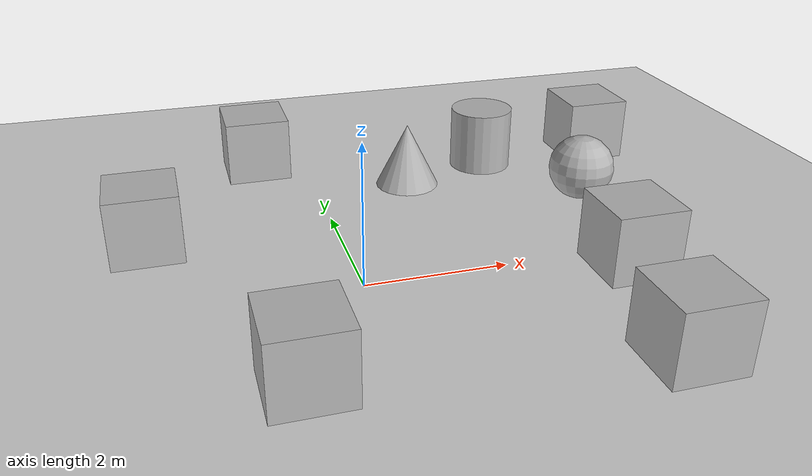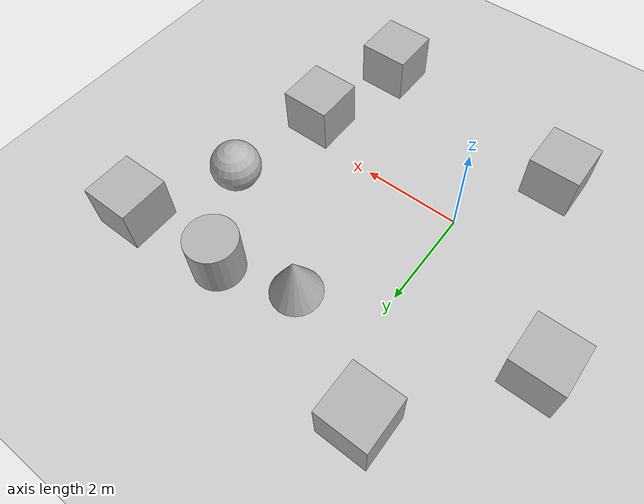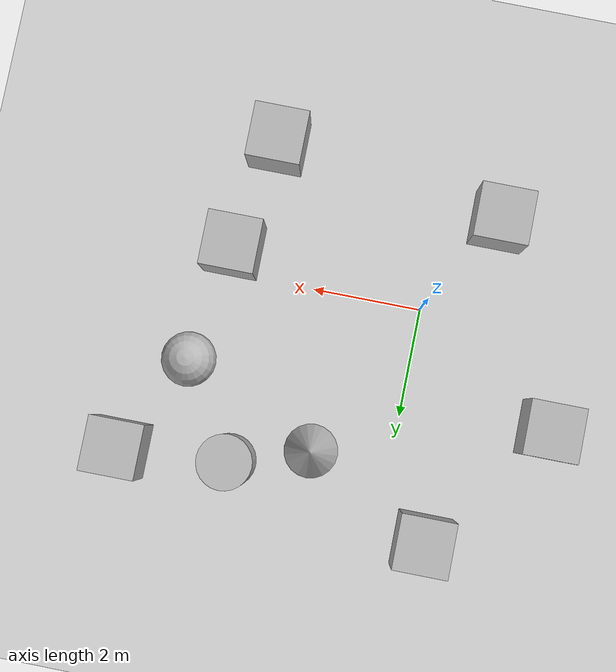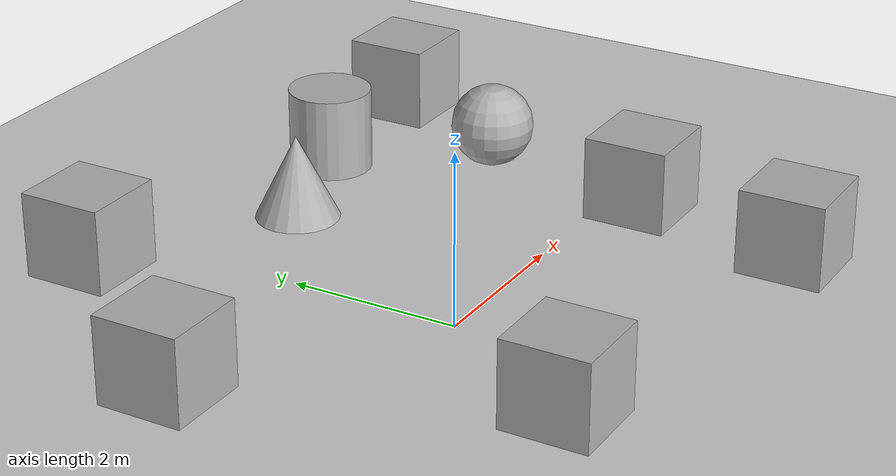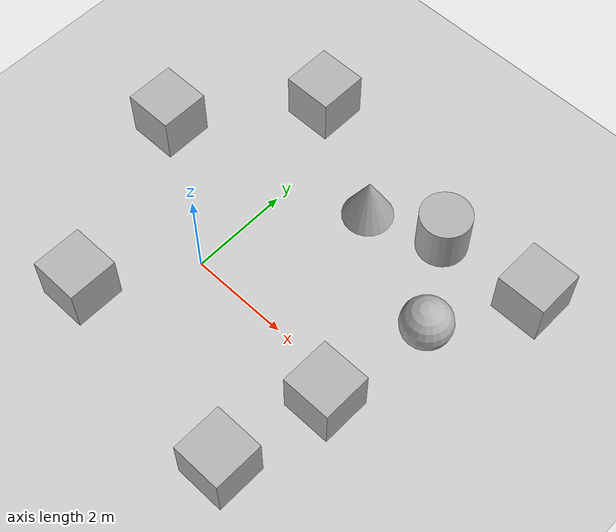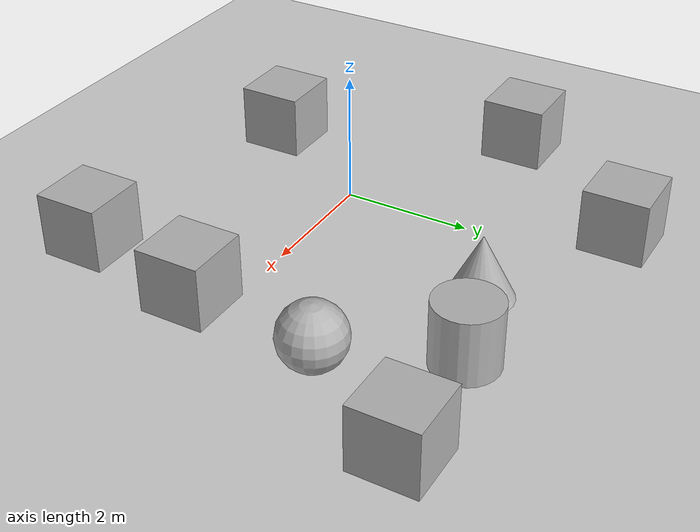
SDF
<sdf version='1.10'>
  <world name='empty'>
    <physics name='1ms' type='ignored'>
      <max_step_size>0.001</max_step_size>
      <real_time_factor>1</real_time_factor>
      <real_time_update_rate>1000</real_time_update_rate>
    </physics>
    <plugin name='gz::sim::systems::Physics' filename='gz-sim-physics-system'/>
    <plugin name='gz::sim::systems::UserCommands' filename='gz-sim-user-commands-system'/>
    <plugin name='gz::sim::systems::SceneBroadcaster' filename='gz-sim-scene-broadcaster-system'/>
    <plugin name='gz::sim::systems::Contact' filename='gz-sim-contact-system'/>
    <plugin
      filename="gz-sim-sensors-system"
      name="gz::sim::systems::Sensors">
      <render_engine>ogre2</render_engine>
    </plugin>
    <gravity>0 0 -9.8000000000000007</gravity>
    <magnetic_field>5.5644999999999998e-06 2.2875799999999999e-05 -4.2388400000000002e-05</magnetic_field>
    <atmosphere type='adiabatic'/>
    <scene>
      <ambient>0.400000006 0.400000006 0.400000006 1</ambient>
      <background>0.699999988 0.699999988 0.699999988 1</background>
      <shadows>true</shadows>
    </scene>
    <model name='ground_plane'>
      <static>true</static>
      <link name='link'>
        <collision name='collision'>
          <geometry>
            <plane>
              <normal>0 0 1</normal>
              <size>100 100</size>
            </plane>
          </geometry>
          <surface>
            <friction>
              <ode/>
            </friction>
            <bounce/>
            <contact/>
          </surface>
        </collision>
        <visual name='visual'>
          <geometry>
            <plane>
              <normal>0 0 1</normal>
              <size>100 100</size>
            </plane>
          </geometry>
          <material>
            <ambient>0.800000012 0.800000012 0.800000012 1</ambient>
            <diffuse>0.800000012 0.800000012 0.800000012 1</diffuse>
            <specular>0.800000012 0.800000012 0.800000012 1</specular>
          </material>
        </visual>
        <pose>0 0 0 0 0 0</pose>
        <inertial>
          <pose>0 0 0 0 0 0</pose>
          <mass>1</mass>
          <inertia>
            <ixx>1</ixx>
            <ixy>0</ixy>
            <ixz>0</ixz>
            <iyy>1</iyy>
            <iyz>0</iyz>
            <izz>1</izz>
          </inertia>
        </inertial>
        <enable_wind>false</enable_wind>
      </link>
      <pose>0 0 0 0 0 0</pose>
      <self_collide>false</self_collide>
    </model>
    <model name='box'>
      <pose>4.9108427998847457 3.5283468808821032 0.49999999990199806 6.2287739151293738e-22 9.3279666454713669e-22 -3.6315533669320137e-22</pose>
      <link name='box_link'>
        <inertial>
          <inertia>
            <ixx>0.16666</ixx>
            <ixy>0</ixy>
            <ixz>0</ixz>
            <iyy>0.16666</iyy>
            <iyz>0</iyz>
            <izz>0.16666</izz>
          </inertia>
          <mass>1</mass>
          <pose>0 0 0 0 0 0</pose>
        </inertial>
        <collision name='box_collision'>
          <geometry>
            <box>
              <size>1 1 1</size>
            </box>
          </geometry>
          <surface>
            <friction>
              <ode/>
            </friction>
            <bounce/>
            <contact/>
          </surface>
        </collision>
        <visual name='box_visual'>
          <geometry>
            <box>
              <size>1 1 1</size>
            </box>
          </geometry>
          <material>
            <ambient>0.300000012 0.300000012 0.300000012 1</ambient>
            <diffuse>0.699999988 0.699999988 0.699999988 1</diffuse>
            <specular>1 1 1 1</specular>
          </material>
        </visual>
        <pose>0 0 0 0 0 0</pose>
        <enable_wind>false</enable_wind>
      </link>
      <static>false</static>
      <self_collide>false</self_collide>
    </model>
    <model name='cone'>
      <pose>1.4732154155035606 2.9408778593240905 0.49999999991622396 1.1632044848892052e-07 -2.659319401457765e-08 0.017572902059282428</pose>
      <link name='cone_link'>
        <inertial>
          <inertia>
            <ixx>0.074999999999999997</ixx>
            <ixy>0</ixy>
            <ixz>0</ixz>
            <iyy>0.074999999999999997</iyy>
            <iyz>0</iyz>
            <izz>0.074999999999999997</izz>
          </inertia>
          <mass>1</mass>
          <pose>0 0 0 0 0 0</pose>
        </inertial>
        <collision name='cone_collision'>
          <geometry>
            <cone>
              <radius>0.5</radius>
              <length>1</length>
            </cone>
          </geometry>
          <surface>
            <friction>
              <ode/>
            </friction>
            <bounce/>
            <contact/>
          </surface>
        </collision>
        <visual name='cone_visual'>
          <geometry>
            <cone>
              <radius>0.5</radius>
              <length>1</length>
            </cone>
          </geometry>
          <material>
            <ambient>0.300000012 0.300000012 0.300000012 1</ambient>
            <diffuse>0.699999988 0.699999988 0.699999988 1</diffuse>
            <specular>1 1 1 1</specular>
          </material>
        </visual>
        <pose>0 0 0 0 0 0</pose>
        <enable_wind>false</enable_wind>
      </link>
      <static>false</static>
      <self_collide>false</self_collide>
    </model>
    <model name='box_0'>
      <pose>-0.81356091926718044 4.1602014499805469 0.49999999990199806 6.2287739151293738e-22 9.3279666454713669e-22 -3.6315533669320137e-22</pose>
      <link name='box_link'>
        <inertial>
          <inertia>
            <ixx>0.16666</ixx>
            <ixy>0</ixy>
            <ixz>0</ixz>
            <iyy>0.16666</iyy>
            <iyz>0</iyz>
            <izz>0.16666</izz>
          </inertia>
          <mass>1</mass>
          <pose>0 0 0 0 0 0</pose>
        </inertial>
        <collision name='box_collision'>
          <geometry>
            <box>
              <size>1 1 1</size>
            </box>
          </geometry>
          <surface>
            <friction>
              <ode/>
            </friction>
            <bounce/>
            <contact/>
          </surface>
        </collision>
        <visual name='box_visual'>
          <geometry>
            <box>
              <size>1 1 1</size>
            </box>
          </geometry>
          <material>
            <ambient>0.300000012 0.300000012 0.300000012 1</ambient>
            <diffuse>0.699999988 0.699999988 0.699999988 1</diffuse>
            <specular>1 1 1 1</specular>
          </material>
        </visual>
        <pose>0 0 0 0 0 0</pose>
        <enable_wind>false</enable_wind>
      </link>
      <static>false</static>
      <self_collide>false</self_collide>
    </model>
    <model name='box_1'>
      <pose>-2.6862389542636702 1.751132783610561 0.49999999990199806 6.2287739151293738e-22 9.3279666454713669e-22 -3.6315533669320137e-22</pose>
      <link name='box_link'>
        <inertial>
          <inertia>
            <ixx>0.16666</ixx>
            <ixy>0</ixy>
            <ixz>0</ixz>
            <iyy>0.16666</iyy>
            <iyz>0</iyz>
            <izz>0.16666</izz>
          </inertia>
          <mass>1</mass>
          <pose>0 0 0 0 0 0</pose>
        </inertial>
        <collision name='box_collision'>
          <geometry>
            <box>
              <size>1 1 1</size>
            </box>
          </geometry>
          <surface>
            <friction>
              <ode/>
            </friction>
            <bounce/>
            <contact/>
          </surface>
        </collision>
        <visual name='box_visual'>
          <geometry>
            <box>
              <size>1 1 1</size>
            </box>
          </geometry>
          <material>
            <ambient>0.300000012 0.300000012 0.300000012 1</ambient>
            <diffuse>0.699999988 0.699999988 0.699999988 1</diffuse>
            <specular>1 1 1 1</specular>
          </material>
        </visual>
        <pose>0 0 0 0 0 0</pose>
        <enable_wind>false</enable_wind>
      </link>
      <static>false</static>
      <self_collide>false</self_collide>
    </model>
    <model name='box_2'>
      <pose>3.1499999999999999 -2.54 0.49999999990199806 3.4361003538289414e-21 -2.7258416712513707e-21 1.4448406434864052e-22</pose>
      <link name='box_link'>
        <inertial>
          <inertia>
            <ixx>0.16666</ixx>
            <ixy>0</ixy>
            <ixz>0</ixz>
            <iyy>0.16666</iyy>
            <iyz>0</iyz>
            <izz>0.16666</izz>
          </inertia>
          <mass>1</mass>
          <pose>0 0 0 0 0 0</pose>
        </inertial>
        <collision name='box_collision'>
          <geometry>
            <box>
              <size>1 1 1</size>
            </box>
          </geometry>
          <surface>
            <friction>
              <ode/>
            </friction>
            <bounce/>
            <contact/>
          </surface>
        </collision>
        <visual name='box_visual'>
          <geometry>
            <box>
              <size>1 1 1</size>
            </box>
          </geometry>
          <material>
            <ambient>0.300000012 0.300000012 0.300000012 1</ambient>
            <diffuse>0.699999988 0.699999988 0.699999988 1</diffuse>
            <specular>1 1 1 1</specular>
          </material>
        </visual>
        <pose>0 0 0 0 0 0</pose>
        <enable_wind>false</enable_wind>
      </link>
      <static>false</static>
      <self_collide>false</self_collide>
    </model>
    <model name='box_3'>
      <pose>-1.1281622042356609 -1.8941471760412338 0.49999999990199806 6.2287739151293738e-22 9.3279666454713669e-22 -3.6315533669320137e-22</pose>
      <link name='box_link'>
        <inertial>
          <inertia>
            <ixx>0.16666</ixx>
            <ixy>0</ixy>
            <ixz>0</ixz>
            <iyy>0.16666</iyy>
            <iyz>0</iyz>
            <izz>0.16666</izz>
          </inertia>
          <mass>1</mass>
          <pose>0 0 0 0 0 0</pose>
        </inertial>
        <collision name='box_collision'>
          <geometry>
            <box>
              <size>1 1 1</size>
            </box>
          </geometry>
          <surface>
            <friction>
              <ode/>
            </friction>
            <bounce/>
            <contact/>
          </surface>
        </collision>
        <visual name='box_visual'>
          <geometry>
            <box>
              <size>1 1 1</size>
            </box>
          </geometry>
          <material>
            <ambient>0.300000012 0.300000012 0.300000012 1</ambient>
            <diffuse>0.699999988 0.699999988 0.699999988 1</diffuse>
            <specular>1 1 1 1</specular>
          </material>
        </visual>
        <pose>0 0 0 0 0 0</pose>
        <enable_wind>false</enable_wind>
      </link>
      <static>false</static>
      <self_collide>false</self_collide>
    </model>
    <model name='box_4'>
      <pose>3.5819292296819398 -0.45701265919046274 0.49999999990199806 6.2287739151293738e-22 9.3279666454713669e-22 -3.6315533669320137e-22</pose>
      <link name='box_link'>
        <inertial>
          <inertia>
            <ixx>0.16666</ixx>
            <ixy>0</ixy>
            <ixz>0</ixz>
            <iyy>0.16666</iyy>
            <iyz>0</iyz>
            <izz>0.16666</izz>
          </inertia>
          <mass>1</mass>
          <pose>0 0 0 0 0 0</pose>
        </inertial>
        <collision name='box_collision'>
          <geometry>
            <box>
              <size>1 1 1</size>
            </box>
          </geometry>
          <surface>
            <friction>
              <ode/>
            </friction>
            <bounce/>
            <contact/>
          </surface>
        </collision>
        <visual name='box_visual'>
          <geometry>
            <box>
              <size>1 1 1</size>
            </box>
          </geometry>
          <material>
            <ambient>0.300000012 0.300000012 0.300000012 1</ambient>
            <diffuse>0.699999988 0.699999988 0.699999988 1</diffuse>
            <specular>1 1 1 1</specular>
          </material>
        </visual>
        <pose>0 0 0 0 0 0</pose>
        <enable_wind>false</enable_wind>
      </link>
      <static>false</static>
      <self_collide>false</self_collide>
    </model>
    <model name='cylinder'>
      <pose>2.9128524575935679 3.3996846481156466 0.50000593146799377 -4.548940504136115e-06 1.097210591025837e-05 -0.026733117453456131</pose>
      <link name='cylinder_link'>
        <inertial>
          <inertia>
            <ixx>0.14580000000000001</ixx>
            <ixy>0</ixy>
            <ixz>0</ixz>
            <iyy>0.14580000000000001</iyy>
            <iyz>0</iyz>
            <izz>0.125</izz>
          </inertia>
          <mass>1</mass>
          <pose>0 0 0 0 0 0</pose>
        </inertial>
        <collision name='cylinder_collision'>
          <geometry>
            <cylinder>
              <radius>0.5</radius>
              <length>1</length>
            </cylinder>
          </geometry>
          <surface>
            <friction>
              <ode/>
            </friction>
            <bounce/>
            <contact/>
          </surface>
        </collision>
        <visual name='cylinder_visual'>
          <geometry>
            <cylinder>
              <radius>0.5</radius>
              <length>1</length>
            </cylinder>
          </geometry>
          <material>
            <ambient>0.300000012 0.300000012 0.300000012 1</ambient>
            <diffuse>0.699999988 0.699999988 0.699999988 1</diffuse>
            <specular>1 1 1 1</specular>
          </material>
        </visual>
        <pose>0 0 0 0 0 0</pose>
        <enable_wind>false</enable_wind>
      </link>
      <static>false</static>
      <self_collide>false</self_collide>
    </model>
    <model name='sphere_0'>
      <pose>3.9511681986727591 1.7277848208608555 0.499999999902001 0 0 0</pose>
      <link name='sphere_link'>
        <inertial>
          <inertia>
            <ixx>0.10000000000000001</ixx>
            <ixy>0</ixy>
            <ixz>0</ixz>
            <iyy>0.10000000000000001</iyy>
            <iyz>0</iyz>
            <izz>0.10000000000000001</izz>
          </inertia>
          <mass>1</mass>
          <pose>0 0 0 0 0 0</pose>
        </inertial>
        <collision name='sphere_collision'>
          <geometry>
            <sphere>
              <radius>0.5</radius>
            </sphere>
          </geometry>
          <surface>
            <friction>
              <ode/>
            </friction>
            <bounce/>
            <contact/>
          </surface>
        </collision>
        <visual name='sphere_visual'>
          <geometry>
            <sphere>
              <radius>0.5</radius>
            </sphere>
          </geometry>
          <material>
            <ambient>0.300000012 0.300000012 0.300000012 1</ambient>
            <diffuse>0.699999988 0.699999988 0.699999988 1</diffuse>
            <specular>1 1 1 1</specular>
          </material>
        </visual>
        <pose>0 0 0 0 0 0</pose>
        <enable_wind>false</enable_wind>
      </link>
      <static>false</static>
      <self_collide>false</self_collide>
    </model>
    <light name='sun' type='directional'>
      <pose>0 0 10 0 0 0</pose>
      <cast_shadows>true</cast_shadows>
      <intensity>1</intensity>
      <direction>-0.5 0.10000000000000001 -0.90000000000000002</direction>
      <diffuse>0.800000012 0.800000012 0.800000012 1</diffuse>
      <specular>0.200000003 0.200000003 0.200000003 1</specular>
      <attenuation>
        <range>1000</range>
        <linear>0.01</linear>
        <constant>0.90000000000000002</constant>
        <quadratic>0.001</quadratic>
      </attenuation>
      <spot>
        <inner_angle>0</inner_angle>
        <outer_angle>0</outer_angle>
        <falloff>0</falloff>
      </spot>
    </light>
  </world>
</sdf>
